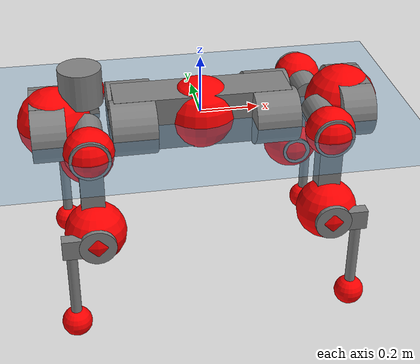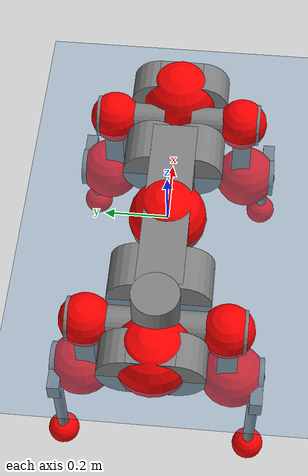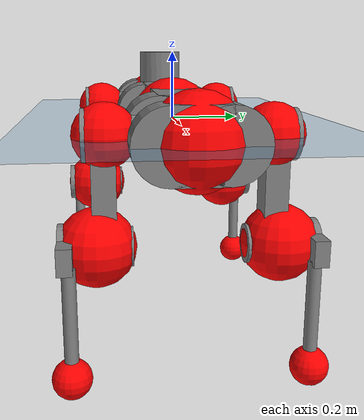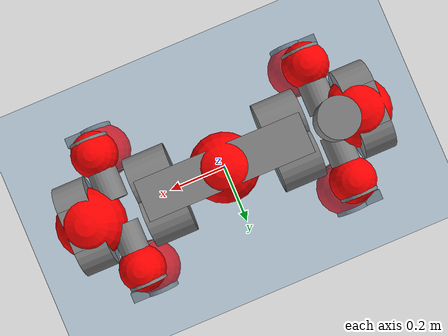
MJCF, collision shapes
<mujoco model="anymal_c">
  <compiler angle="radian" assetdir="assets" balanceinertia="true" inertiafromgeom="false"/>

  <option timestep="0.005" density="1.2" viscosity="2e-05"/>

  <size nkey="1"/>

  <visual>
    <quality shadowsize="8192"/>
    <map shadowclip="0.5"/>
  </visual>

  <default>
    <default class="/">
      <material specular="0" shininess="0.25"/>
      <geom contype="0" conaffinity="0" group="1" solref="-1000 -80"/>
      <site size="0.01 0.005 0.005" group="5"/>
      <general forcelimited="true" forcerange="-80 80" biastype="affine" gainprm="80" biasprm="0 -80 -2"/>
      <default class="anymal_c">
        <joint armature="0.01" damping="0.01" frictionloss="0.1"/>
        <default class="visual">
          <geom type="mesh" group="2"/>
          <default class="visual_zflip"/>
        </default>
        <default class="collision">
          <geom type="cylinder" group="3"/>
          <default class="foot">
            <geom size="0.03 0 0" type="sphere" condim="6" priority="1" friction="0.8 0.02 0.01" solimp="0.015 1 0.03"/>
          </default>
        </default>
      </default>
      <default class="reward_collision_sphere">
        <geom group="5" rgba="1 0 0 1"/>
      </default>
    </default>
  </default>

  <asset>
    <texture type="skybox" colorspace="auto" name="//unnamed_texture_0" builtin="gradient" rgb1="0.95 0.95 0.95" rgb2="0.95 0.95 0.95" width="100" height="600"/>
    <texture type="2d" colorspace="auto" name="texplane" builtin="checker" rgb1="0.345 0.575 0.748" rgb2="0.345 0.575 0.748" markrgb="1 1 1" width="512" height="512"/>
    <texture type="2d" colorspace="linear" name="base" file="base.png"/>
    <texture type="2d" colorspace="linear" name="top_shell" file="top_shell.png"/>
    <texture type="2d" colorspace="linear" name="bottom_shell" file="bottom_shell.png"/>
    <texture type="2d" colorspace="linear" name="remote" file="remote.png"/>
    <texture type="2d" colorspace="linear" name="hatch" file="hatch.png"/>
    <texture type="2d" colorspace="linear" name="handle" file="handle.png"/>
    <texture type="2d" colorspace="linear" name="face" file="face.png"/>
    <texture type="2d" colorspace="linear" name="battery" file="battery.png"/>
    <texture type="2d" colorspace="linear" name="lidar_cage" file="lidar_cage.png"/>
    <texture type="2d" colorspace="linear" name="depth_camera" file="depth_camera.png"/>
    <texture type="2d" colorspace="linear" name="wide_angle_camera" file="wide_angle_camera.png"/>
    <texture type="2d" colorspace="linear" name="lidar" file="lidar.png"/>
    <texture type="2d" colorspace="linear" name="drive" file="drive.png"/>
    <texture type="2d" colorspace="linear" name="hip_l" file="hip_l.png"/>
    <texture type="2d" colorspace="linear" name="shank_l" file="shank_l.png"/>
    <texture type="2d" colorspace="linear" name="foot" file="foot.png"/>
    <texture type="2d" colorspace="linear" name="thigh" file="thigh.png"/>
    <texture type="2d" colorspace="linear" name="shank_r" file="shank_r.png"/>
    <texture type="2d" colorspace="linear" name="hip_r" file="hip_r.png"/>
    <material name="MatPlane" class="/" texture="texplane" texuniform="true" texrepeat="2 2" specular="0.9" shininess="0.5"/>
    <material name="black_plastic" class="/" rgba="0.007 0.007 0.007 1"/>
    <material name="green" class="/" rgba="0.052 0.178 0.033 1"/>
    <material name="red" class="/" rgba="0.178 0.006 0.005 1"/>
    <material name="yellow" class="/" rgba="0.178 0.119 0.006 1"/>
    <material name="lwl" class="/" rgba="0.8 0.8 0.8 1"/>
    <material name="base" class="/" texture="base"/>
    <material name="top_shell" class="/" texture="top_shell"/>
    <material name="bottom_shell" class="/" texture="bottom_shell"/>
    <material name="hip_l" class="/" texture="hip_l"/>
    <material name="thigh" class="/" texture="thigh"/>
    <material name="shank_l" class="/" texture="shank_l"/>
    <material name="foot" class="/" texture="foot"/>
    <material name="hip_r" class="/" texture="hip_r"/>
    <material name="shank" class="/" texture="shank_r"/>
    <material name="hatch" class="/" texture="hatch"/>
    <material name="remote" class="/" texture="remote"/>
    <material name="handle" class="/" texture="handle"/>
    <material name="face" class="/" texture="face"/>
    <material name="depth_camera" class="/" texture="depth_camera"/>
    <material name="wide_angle_camera" class="/" texture="wide_angle_camera"/>
    <material name="battery" class="/" texture="battery"/>
    <material name="lidar_cage" class="/" texture="lidar_cage"/>
    <material name="lidar" class="/" texture="lidar"/>
    <material name="drive" class="/" texture="drive"/>
    <mesh name="base_0" class="/" file="base_0.obj"/>
    <mesh name="base_1" class="/" file="base_1.obj"/>
    <mesh name="base_2" class="/" file="base_2.obj"/>
    <mesh name="base_3" class="/" file="base_3.obj"/>
    <mesh name="base_4" class="/" file="base_4.obj"/>
    <mesh name="base_5" class="/" file="base_5.obj"/>
    <mesh name="top_shell" class="/" file="top_shell.obj"/>
    <mesh name="bottom_shell" class="/" file="bottom_shell.obj"/>
    <mesh name="remote" class="/" file="remote.obj"/>
    <mesh name="handle" class="/" file="handle.obj"/>
    <mesh name="face" class="/" file="face.obj"/>
    <mesh name="wide_angle_camera" class="/" file="wide_angle_camera.obj"/>
    <mesh name="depth_camera" class="/" file="depth_camera.obj"/>
    <mesh name="battery" class="/" file="battery.obj"/>
    <mesh name="lidar_cage" class="/" file="lidar_cage.obj"/>
    <mesh name="lidar" class="/" file="lidar.obj"/>
    <mesh name="drive" class="/" file="drive.obj"/>
    <mesh name="hip_l" class="/" file="hip_l.obj"/>
    <mesh name="thigh" class="/" file="thigh.obj"/>
    <mesh name="shank_l" class="/" file="shank_l.obj"/>
    <mesh name="foot" class="/" file="foot.obj"/>
    <mesh name="hip_r" class="/" file="hip_r.obj"/>
    <mesh name="hatch" class="/" file="hatch.obj"/>
    <mesh name="shank_r" class="/" file="shank_r.obj"/>
  </asset>

  <worldbody>
    <geom name="floor" class="/" size="100 100 0.125" type="plane" group="0" material="MatPlane"/>
    <light name="toplight_shadow" class="/" pos="0 0 5" dir="0.0990148 0.0990148 -0.990148" type="directional" ambient="0.04 0.04 0.04" diffuse="0.55 0.55 0.55" specular="0.12 0.12 0.12"/>
    <light name="toplight_fill" class="/" pos="0 0 5" dir="0.0990148 0.0990148 -0.990148" type="directional" castshadow="false" ambient="0.04 0.04 0.04" diffuse="0.3 0.3 0.3" specular="0.08 0.08 0.08"/>
    <body name="trunk" childclass="anymal_c" pos="0.00103919 -1.35805e-05 -0.000600002" quat="1 -4.7653e-05 1.68696e-05 2.06983e-05">
      <inertial pos="6.23409e-05 -0.0026556 0.0489816" quat="0.498364 0.504538 0.498586 0.498485" mass="22.1584" diaginertia="1.05434 0.607297 0.227862"/>
      <joint name="//unnamed_joint_0" type="free" armature="0" damping="0" frictionloss="0"/>
      <geom name="//unnamed_geom_1" class="visual" material="green" mesh="base_0"/>
      <geom name="//unnamed_geom_2" class="visual" material="yellow" mesh="base_1"/>
      <geom name="//unnamed_geom_3" class="visual" material="red" mesh="base_2"/>
      <geom name="//unnamed_geom_4" class="visual" material="black_plastic" mesh="base_3"/>
      <geom name="//unnamed_geom_5" class="visual" material="lwl" mesh="base_4"/>
      <geom name="//unnamed_geom_6" class="visual" material="base" mesh="base_5"/>
      <geom name="trunk_1" class="collision" size="0.300677 0.0725772 0.0933136" type="box"/>
      <geom name="trunk_2" class="collision" size="0.0933136 0.0751693" pos="0.240259 0.0696251 0" quat="0.707107 0 0.707107 0"/>
      <geom name="trunk_3" class="collision" size="0.0933136 0.0751693" pos="-0.240259 0.0696251 0" quat="0.707107 0 0.707107 0"/>
      <geom name="trunk_4" class="collision" size="0.0933136 0.0751693" pos="0.240259 -0.0696251 0" quat="0.707107 0 0.707107 0"/>
      <geom name="trunk_5" class="collision" size="0.0933136 0.0751693" pos="-0.240259 -0.0696251 0" quat="0.707107 0 0.707107 0"/>
      <geom name="//unnamed_geom_12" class="visual" material="top_shell" mesh="top_shell"/>
      <geom name="//unnamed_geom_13" class="visual" material="bottom_shell" mesh="bottom_shell"/>
      <geom name="//unnamed_geom_14" class="visual" material="remote" mesh="remote"/>
      <geom name="//unnamed_geom_15" class="visual" material="handle" mesh="handle"/>
      <geom name="//unnamed_geom_16" class="visual" pos="0.457872 0 0" quat="1 0 0 0" material="face" mesh="face"/>
      <geom name="trunk_6" class="collision" size="0.057025 0.0725772 0.0933136" pos="0.518627 0 0" type="box"/>
      <geom name="//unnamed_geom_18" class="collision" size="0.0933136 0.057025" pos="0.518627 0.0696251 0" quat="0.707107 0 0.707107 0"/>
      <geom name="//unnamed_geom_19" class="collision" size="0.0933136 0.057025" pos="0.518627 -0.0696251 0" quat="0.707107 0 0.707107 0"/>
      <geom name="//unnamed_geom_20" class="visual" pos="0.509952 0 -0.0288158" quat="0.965926 0 0.258819 0" material="depth_camera" mesh="depth_camera"/>
      <geom name="//unnamed_geom_21" class="visual" pos="0.566679 0 0.0151372" material="wide_angle_camera" mesh="wide_angle_camera"/>
      <geom name="//unnamed_geom_22" class="visual_zflip" pos="-0.457872 0 0" quat="0 0 0 1" material="face" mesh="face"/>
      <geom name="trunk_7" class="collision" size="0.057025 0.0725772 0.0933136" pos="-0.518627 0 0" quat="0 0 0 1" type="box"/>
      <geom name="//unnamed_geom_24" class="collision" size="0.0933136 0.057025" pos="-0.518627 -0.0696251 0" quat="0 -0.707107 0 0.707107"/>
      <geom name="//unnamed_geom_25" class="collision" size="0.0933136 0.057025" pos="-0.518627 0.0696251 0" quat="0 -0.707107 0 0.707107"/>
      <geom name="//unnamed_geom_26" class="visual" pos="-0.509952 0 -0.0288158" quat="0 -0.258819 0 0.965926" material="depth_camera" mesh="depth_camera"/>
      <geom name="//unnamed_geom_27" class="visual_zflip" pos="-0.566679 0 0.0151372" quat="0 0 0 1" material="wide_angle_camera" mesh="wide_angle_camera"/>
      <geom name="//unnamed_geom_28" class="visual" material="battery" mesh="battery"/>
      <geom name="//unnamed_geom_29" class="visual" pos="0 0.0746033 0.0300849" quat="0.683013 -0.183013 0.183013 0.683013" material="depth_camera" mesh="depth_camera"/>
      <geom name="//unnamed_geom_30" class="visual" pos="0 -0.0746033 0.0300849" quat="0.683013 0.183013 0.183013 -0.683013" material="depth_camera" mesh="depth_camera"/>
      <geom name="//unnamed_geom_31" class="visual" pos="-0.402088 0 0.0743211" quat="1 0 0 0" material="lidar_cage" mesh="lidar_cage"/>
      <geom name="trunk_8" class="collision" size="0.0725772 0.0622091" pos="-0.402088 0 0.134991"/>
      <geom name="//unnamed_geom_33" class="visual" pos="-0.402088 -4.32131e-05 0.143789" quat="0.707107 0 0 -0.707107" material="lidar" mesh="lidar"/>
      <geom name="//unnamed_geom_34" class="visual" pos="0.331281 0.103449 -2.85076e-10" quat="0.258819 0.965926 0 0" material="drive" mesh="drive"/>
      <geom name="//unnamed_geom_35" class="visual" pos="0.331281 -0.103449 2.85076e-10" quat="0.258819 -0.965926 0 0" material="drive" mesh="drive"/>
      <geom name="//unnamed_geom_36" class="visual" pos="-0.331281 0.103449 2.85076e-10" quat="0 0 0.965926 -0.258819" material="drive" mesh="drive"/>
      <geom name="//unnamed_geom_37" class="visual" pos="-0.331281 -0.103449 -2.85076e-10" quat="0 0 -0.965926 -0.258819" material="drive" mesh="drive"/>
      <geom name="//unnamed_geom_38" class="visual" pos="0.128138 0 0.0738155" quat="1 0 0 0" material="hatch" mesh="hatch"/>
      <geom name="//unnamed_geom_39" class="reward_collision_sphere" size="0.124418"/>
      <geom name="//unnamed_geom_40" class="reward_collision_sphere" size="0.124418" pos="0.497087 0 0"/>
      <geom name="//unnamed_geom_41" class="reward_collision_sphere" size="0.124418" pos="-0.497087 0 0"/>
      <site name="imu" pos="0.288335 0.00895677 0.0333087" size="0.0103682"/>
      <camera name="track" pos="0 -1.98929 0" quat="0.707107 0.707107 0 0" mode="trackcom"/>
      <camera name="ego_camera" pos="0.497087 0 -0.0404468" quat="-0.5 -0.5 0.5 0.5"/>
      <body name="LF_HIP" pos="0.329672 0.101627 -0.000837403" quat="0.258983 0.965882 -0.000162825 -0.000193369">
        <inertial pos="0.0627559 -0.0169735 -0.00837683" quat="-0.128069 0.709646 -0.134422 0.679656" mass="3.02146" diaginertia="0.00932957 0.00449602 0.00337385"/>
        <joint name="LF_HAA" pos="0 0 0" axis="0.999994 0.00334039 0.0012569" range="-0.716556 0.48662" armature="0.0106729" damping="0.016322" frictionloss="0.0951441"/>
        <geom name="//unnamed_geom_42" class="visual" pos="0 -1.67698e-05 2.75442e-06" quat="0.258819 -0.965926 0 0" material="hip_l" mesh="hip_l"/>
        <geom name="//unnamed_geom_43" class="visual" pos="0.0661678 -0.078734 -0.0455793" quat="0.183013 -0.683013 0.683013 0.183013" material="drive" mesh="drive"/>
        <geom name="//unnamed_geom_44" class="collision" size="0.0518409 0.0725772" pos="0.0661678 -0.0118958 -0.00698214" quat="-0.353553 -0.612372 0.612372 -0.353553"/>
        <body name="LF_THIGH" pos="0.0657039 -0.0697136 -0.0418187" quat="0.181925 -0.682654 0.683543 0.183455">
          <inertial pos="0.0347539 1.43541e-05 -0.247567" quat="0.993592 -0.0145801 -0.0747669 0.0835005" mass="3.3388" diaginertia="0.0495656 0.0280932 0.00436934"/>
          <joint name="LF_HFE" pos="0 0 0" axis="0.999994 -0.00298957 -0.00181819" stiffness="0.00217494" range="-3.09278 3.16923" armature="0.0109424" damping="0.0193603" frictionloss="0.0987123"/>
          <geom name="//unnamed_geom_45" class="visual" pos="0.00218842 3.44844e-06 0" quat="0.707107 0 0 -0.707107" material="thigh" mesh="thigh"/>
          <geom name="//unnamed_geom_46" class="collision" size="0.0673932 0.0414727" pos="0.0441855 0 0" quat="0.5 0.5 -0.5 -0.5"/>
          <geom name="//unnamed_geom_47" class="collision" size="0.0388807 0.0311045 0.146517" pos="0.0331391 0 -0.142893" quat="0.707107 0 0 -0.707107" type="box"/>
          <geom name="//unnamed_geom_48" class="visual" pos="0.110795 0 -0.288184" quat="1 0 0 0" material="drive" mesh="drive"/>
          <geom name="//unnamed_geom_49" class="collision" size="0.0518409 0.0725772" pos="0.0334705 0 -0.288184" quat="0.707107 0 0.707107 0"/>
          <geom name="//unnamed_geom_50" class="reward_collision_sphere" size="0.0829454" pos="0.0276159 0 0"/>
          <body name="LF_SHANK" pos="0.111038 0.00238795 -0.288447" quat="1 0.000247608 -0.000127195 0.000373477">
            <inertial pos="0.00635132 -0.0619912 -0.0819004" quat="0.992792 -0.117024 -0.00111864 -0.0258386" mass="0.660558" diaginertia="0.0163872 0.00909098 0.00118097"/>
            <joint name="LF_KFE" pos="0 0 0" axis="0.999996 0.0028598 -2.29765e-06" range="-3.10988 3.13681" armature="0.0100439" damping="0.00978079" frictionloss="0.10408"/>
            <geom name="//unnamed_geom_51" class="visual" pos="0.000713596 0.00380493 0" quat="0.707107 0 0 -0.707107" material="shank_l" mesh="shank_l"/>
            <geom name="LF_kfe_act" class="collision" size="0.0622091 0.0207364" pos="0.0220927 0 0" quat="0.5 0.5 -0.5 -0.5"/>
            <geom name="//unnamed_geom_53" class="collision" size="0.059616 0.0349926 0.0196995" pos="0.0220927 -0.0571911 0" quat="0.5 0.5 -0.5 -0.5" type="box"/>
            <geom name="//unnamed_geom_54" class="visual" pos="0.0144153 -0.0862528 -0.341745" quat="0.382683 0 0 -0.92388" material="foot" mesh="foot"/>
            <geom name="LF_calf" class="collision" size="0.0181443 0.146453" pos="0.0144155 -0.087479 -0.170873" quat="0.707107 0 0 -0.707107"/>
            <geom name="LF_foot" class="foot" size="0.0305663" pos="0.0144155 -0.087479 -0.318994" quat="0.707107 0 0 -0.707107"/>
            <geom name="//unnamed_geom_57" class="reward_collision_sphere" size="0.103682" pos="-0.0552319 0 0"/>
            <geom name="//unnamed_geom_58" class="reward_collision_sphere" size="0.0518409" pos="0.0144155 -0.087479 -0.318994"/>
            <site name="LF_foot" class="foot" pos="0.0144155 -0.087479 -0.318994" quat="0.707107 0 0 -0.707107" size="0.0103682"/>
          </body>
        </body>
      </body>
      <body name="RF_HIP" pos="0.329067 -0.103586 0.00138954" quat="0.25869 -0.96596 -1.95568e-05 2.53248e-05">
        <inertial pos="0.0613685 0.0129806 -0.0100856" quat="0.14286 0.670324 0.128851 0.716697" mass="3.0574" diaginertia="0.0092608 0.00489939 0.00335126"/>
        <joint name="RF_HAA" pos="0 0 0" axis="0.999955 0.00367574 -0.00873735" range="-0.507113 0.721643" armature="0.0103458" damping="0.000369522" frictionloss="0.101299"/>
        <geom name="//unnamed_geom_59" class="visual" pos="0 1.67696e-05 2.75441e-06" quat="0.258819 0.965926 0 0" material="hip_r" mesh="hip_r"/>
        <geom name="//unnamed_geom_60" class="visual" pos="0.0661678 0.078734 -0.0455793" quat="0.183013 0.683013 0.683013 -0.183013" material="drive" mesh="drive"/>
        <geom name="//unnamed_geom_61" class="collision" size="0.0518409 0.0725772" pos="0.0661678 0.0118958 -0.00698214" quat="-0.353553 0.612372 0.612372 0.353553"/>
        <body name="RF_THIGH" pos="0.0672642 0.0720055 -0.0448611" quat="0.182641 0.682476 0.683462 -0.183707">
          <inertial pos="0.0368194 0.000795079 -0.24899" quat="0.992665 -0.00536546 -0.0853343 0.0854685" mass="3.56229" diaginertia="0.0494753 0.0285523 0.00462867"/>
          <joint name="RF_HFE" pos="0 0 0" axis="0.999998 -0.0017031 0.00102321" range="-3.15497 3.157" armature="0.00964545" damping="0.0119688" frictionloss="0.10317"/>
          <geom name="//unnamed_geom_62" class="visual" pos="0.00218842 3.44844e-06 0" quat="0.707107 0 0 -0.707107" material="thigh" mesh="thigh"/>
          <geom name="//unnamed_geom_63" class="collision" size="0.0673932 0.0414727" pos="0.0441855 0 0" quat="0.5 0.5 0.5 0.5"/>
          <geom name="//unnamed_geom_64" class="collision" size="0.0388807 0.0311045 0.146517" pos="0.0331391 0 -0.142893" quat="0.707107 0 0 0.707107" type="box"/>
          <geom name="//unnamed_geom_65" class="visual" pos="0.110795 0 -0.288184" quat="1 0 0 0" material="drive" mesh="drive"/>
          <geom name="//unnamed_geom_66" class="collision" size="0.0518409 0.0725772" pos="0.0334705 0 -0.288184" quat="0.707107 0 0.707107 0"/>
          <geom name="//unnamed_geom_67" class="reward_collision_sphere" size="0.0829454" pos="0.0276159 0 0"/>
          <body name="RF_SHANK" pos="0.109358 -0.000517647 -0.287363" quat="1 -0.000226496 0.000120482 -0.000410464">
            <inertial pos="0.00413374 0.0609287 -0.0813699" quat="0.993836 0.10756 0.00945649 0.0251195" mass="0.683588" diaginertia="0.017155 0.00922645 0.00121148"/>
            <joint name="RF_KFE" pos="0 0 0" axis="0.999999 -0.00127973 -2.24158e-05" range="-3.18992 3.11185" armature="0.0116953" damping="0.0226533" frictionloss="0.104407"/>
            <geom name="//unnamed_geom_68" class="visual" pos="0.000713592 -0.00380492 0" quat="0.707107 0 0 0.707107" material="shank" mesh="shank_r"/>
            <geom name="RF_kfe_act" class="collision" size="0.0622091 0.0207364" pos="0.0220927 0 0" quat="0.5 0.5 0.5 0.5"/>
            <geom name="//unnamed_geom_70" class="collision" size="0.059616 0.0349926 0.0196995" pos="0.0220927 0.0571911 0" quat="0.5 0.5 0.5 0.5" type="box"/>
            <geom name="//unnamed_geom_71" class="visual" pos="0.0144157 0.0862528 -0.341745" quat="0.382683 0 0 0.92388" material="foot" mesh="foot"/>
            <geom name="RF_calf" class="collision" size="0.0181443 0.146453" pos="0.0144155 0.087479 -0.170873" quat="0.707107 0 0 0.707107"/>
            <geom name="RF_foot" class="foot" size="0.0279665" pos="0.0144155 0.087479 -0.318994" quat="0.707107 0 0 0.707107"/>
            <geom name="//unnamed_geom_74" class="reward_collision_sphere" size="0.103682" pos="-0.0552319 0 0"/>
            <geom name="//unnamed_geom_75" class="reward_collision_sphere" size="0.0518409" pos="0.0144155 0.087479 -0.318994"/>
            <site name="RF_foot" class="foot" pos="0.0144155 0.087479 -0.318994" quat="0.707107 0 0 0.707107" size="0.0103682"/>
          </body>
        </body>
      </body>
      <body name="LH_HIP" pos="-0.328019 0.102015 -0.00120466" quat="-1.07214e-05 -0.000186829 0.965974 -0.258641">
        <inertial pos="0.0628614 0.01667 -0.0111514" quat="0.132137 0.68718 0.123992 0.703526" mass="3.20681" diaginertia="0.0102776 0.0050177 0.00356104"/>
        <joint name="LH_HAA" pos="0 0 0" axis="0.999912 -0.00800161 -0.0106191" range="-0.497707 0.713358" armature="0.010558" damping="0" frictionloss="0.104104"/>
        <geom name="//unnamed_geom_76" class="visual" pos="0 1.67696e-05 2.75441e-06" quat="-0.258819 -0.965926 0 0" material="hip_r" mesh="hip_r"/>
        <geom name="//unnamed_geom_77" class="visual" pos="0.0661678 0.078734 -0.0455793" quat="0.183013 0.683013 0.683013 -0.183013" material="drive" mesh="drive"/>
        <geom name="//unnamed_geom_78" class="collision" size="0.0518409 0.0725772" pos="0.0661678 0.0118958 -0.00698214" quat="-0.353553 0.612372 0.612372 0.353553"/>
        <body name="LH_THIGH" pos="0.0656909 0.0716681 -0.0434739" quat="0.1829 0.682844 0.683096 -0.183442">
          <inertial pos="0.0315125 -0.000813072 -0.250968" quat="0.992827 -0.00544777 -0.0801915 0.0885068" mass="3.35011" diaginertia="0.0469815 0.0290723 0.00429621"/>
          <joint name="LH_HFE" pos="0 0 0" axis="1 0.000136126 0.000106174" stiffness="0.00949313" range="-3.15492 3.10765" armature="0.0098446" damping="0" frictionloss="0.102589"/>
          <geom name="//unnamed_geom_79" class="visual" pos="0.00218842 3.44844e-06 0" quat="0.707107 0 0 -0.707107" material="thigh" mesh="thigh"/>
          <geom name="//unnamed_geom_80" class="collision" size="0.0673932 0.0414727" pos="0.0441855 0 0" quat="0.5 0.5 -0.5 -0.5"/>
          <geom name="//unnamed_geom_81" class="collision" size="0.0388807 0.0311045 0.146517" pos="0.0331391 0 -0.142893" quat="0.707107 0 0 -0.707107" type="box"/>
          <geom name="//unnamed_geom_82" class="visual" pos="0.110795 0 -0.288184" quat="1 0 0 0" material="drive" mesh="drive"/>
          <geom name="//unnamed_geom_83" class="collision" size="0.0518409 0.0725772" pos="0.0334705 0 -0.288184" quat="0.707107 0 0.707107 0"/>
          <geom name="//unnamed_geom_84" class="reward_collision_sphere" size="0.0829454" pos="0.0276159 0 0"/>
          <body name="LH_SHANK" pos="0.110951 -0.00161245 -0.287195" quat="1 8.88647e-05 0.000137425 0.000137019">
            <inertial pos="0.00662321 0.0634421 -0.080804" quat="0.993359 0.113301 0.00209692 0.0198895" mass="0.675043" diaginertia="0.0168876 0.00957872 0.00120804"/>
            <joint name="LH_KFE" pos="0 0 0" axis="0.999997 -0.00255903 0.000396812" range="-3.09436 3.10456" armature="0.01178" damping="0.0229996" frictionloss="0.0910723"/>
            <geom name="//unnamed_geom_85" class="visual" pos="0.000713592 -0.00380492 0" quat="-0.707107 0 0 -0.707107" material="shank" mesh="shank_r"/>
            <geom name="LH_kfe_act" class="collision" size="0.0622091 0.0207364" pos="0.0220927 0 0" quat="0.5 0.5 -0.5 -0.5"/>
            <geom name="//unnamed_geom_87" class="collision" size="0.059616 0.0349926 0.0196995" pos="0.0220927 0.0571911 0" quat="0.5 0.5 -0.5 -0.5" type="box"/>
            <geom name="//unnamed_geom_88" class="visual" pos="0.0144157 0.0862528 -0.341745" quat="-0.382683 0 0 -0.92388" material="foot" mesh="foot"/>
            <geom name="LH_calf" class="collision" size="0.0181443 0.146453" pos="0.0144155 0.087479 -0.170873" quat="0.707107 0 0 -0.707107"/>
            <geom name="LH_foot" class="foot" size="0.0326006" pos="0.0144155 0.087479 -0.318994" quat="0.707107 0 0 -0.707107"/>
            <geom name="//unnamed_geom_91" class="reward_collision_sphere" size="0.103682" pos="-0.0552319 0 0"/>
            <geom name="//unnamed_geom_92" class="reward_collision_sphere" size="0.0518409" pos="0.0144155 0.087479 -0.318994"/>
            <site name="LH_foot" class="foot" pos="0.0144155 0.087479 -0.318994" quat="0.707107 0 0 -0.707107" size="0.0103682"/>
          </body>
        </body>
      </body>
      <body name="RH_HIP" pos="-0.32861 -0.104337 0.000600797" quat="5.50193e-05 -0.000154544 -0.96593 -0.258805">
        <inertial pos="0.0614215 -0.0145957 -0.0112698" quat="-0.120698 0.715785 -0.140969 0.67321" mass="3.08855" diaginertia="0.00932891 0.00463366 0.00335464"/>
        <joint name="RH_HAA" pos="0 0 0" axis="0.999895 0.000247915 0.0144693" range="-0.77638 0.508667" armature="0.0104245" damping="0.00634426" frictionloss="0.104274"/>
        <geom name="//unnamed_geom_93" class="visual" pos="0 -1.67698e-05 2.75442e-06" quat="-0.258819 0.965926 0 0" material="hip_l" mesh="hip_l"/>
        <geom name="//unnamed_geom_94" class="visual" pos="0.0661678 -0.078734 -0.0455793" quat="-0.183013 0.683013 -0.683013 -0.183013" material="drive" mesh="drive"/>
        <geom name="//unnamed_geom_95" class="collision" size="0.0518409 0.0725772" pos="0.0661678 -0.0118958 -0.00698214" quat="0.353553 0.612372 -0.612372 0.353553"/>
        <body name="RH_THIGH" pos="0.0687185 -0.0721415 -0.0445409" quat="-0.182035 0.68277 -0.683555 -0.182869">
          <inertial pos="0.0347769 0.000976531 -0.24931" quat="0.993148 -0.0050884 -0.0809115 0.0841664" mass="3.27379" diaginertia="0.0475739 0.0285369 0.00437239"/>
          <joint name="RH_HFE" pos="0 0 0" axis="0.999984 0.000120104 -0.00573456" stiffness="0.0033854" range="-3.11717 3.16175" armature="0.010834" damping="0.011496" frictionloss="0.105436"/>
          <geom name="//unnamed_geom_96" class="visual" pos="0.00218842 3.44844e-06 0" quat="0.707107 0 0 -0.707107" material="thigh" mesh="thigh"/>
          <geom name="//unnamed_geom_97" class="collision" size="0.0673932 0.0414727" pos="0.0441855 0 0" quat="0.5 0.5 0.5 0.5"/>
          <geom name="//unnamed_geom_98" class="collision" size="0.0388807 0.0311045 0.146517" pos="0.0331391 0 -0.142893" quat="0.707107 0 0 0.707107" type="box"/>
          <geom name="//unnamed_geom_99" class="visual" pos="0.110795 0 -0.288184" quat="1 0 0 0" material="drive" mesh="drive"/>
          <geom name="//unnamed_geom_100" class="collision" size="0.0518409 0.0725772" pos="0.0334705 0 -0.288184" quat="0.707107 0 0.707107 0"/>
          <geom name="//unnamed_geom_101" class="reward_collision_sphere" size="0.0829454" pos="0.0276159 0 0"/>
          <body name="RH_SHANK" pos="0.110072 0.00247284 -0.287952" quat="0.999999 -0.00129537 0.000166018 -0.000203418">
            <inertial pos="0.00853688 -0.0608178 -0.0825788" quat="0.99336 -0.112609 -0.0104988 -0.0210811" mass="0.668739" diaginertia="0.0165493 0.00900389 0.00117733"/>
            <joint name="RH_KFE" pos="0 0 0" axis="0.999997 0.0023539 5.03275e-05" range="-3.13595 3.18816" armature="0.0104306" damping="0.0229189" frictionloss="0.104132"/>
            <geom name="//unnamed_geom_102" class="visual" pos="0.000713596 0.00380493 0" quat="0.707107 0 0 -0.707107" material="shank_l" mesh="shank_l"/>
            <geom name="RH_kfe_act" class="collision" size="0.0622091 0.0207364" pos="0.0220927 0 0" quat="0.5 0.5 0.5 0.5"/>
            <geom name="//unnamed_geom_104" class="collision" size="0.059616 0.0349926 0.0196995" pos="0.0220927 -0.0571911 0" quat="0.5 0.5 0.5 0.5" type="box"/>
            <geom name="//unnamed_geom_105" class="visual" pos="0.0144153 -0.0862528 -0.341745" quat="0.382683 0 0 -0.92388" material="foot" mesh="foot"/>
            <geom name="RH_calf" class="collision" size="0.0181443 0.146453" pos="0.0144155 -0.087479 -0.170873" quat="0.707107 0 0 0.707107"/>
            <geom name="RH_foot" class="foot" size="0.02786" pos="0.0144155 -0.087479 -0.318994" quat="0.707107 0 0 0.707107"/>
            <geom name="//unnamed_geom_108" class="reward_collision_sphere" size="0.103682" pos="-0.0552319 0 0"/>
            <geom name="//unnamed_geom_109" class="reward_collision_sphere" size="0.0518409" pos="0.0144155 -0.087479 -0.318994"/>
            <site name="RH_foot" class="foot" pos="0.0144155 -0.087479 -0.318994" quat="0.707107 0 0 0.707107" size="0.0103682"/>
          </body>
        </body>
      </body>
    </body>
  </worldbody>

  <contact>
    <pair class="/" geom1="floor" geom2="LF_foot" name="//unnamed_contact_0"/>
    <pair class="/" geom1="floor" geom2="RF_foot" name="//unnamed_contact_1"/>
    <pair class="/" geom1="floor" geom2="LH_foot" name="//unnamed_contact_2"/>
    <pair class="/" geom1="floor" geom2="RH_foot" name="//unnamed_contact_3"/>
  </contact>

  <actuator>
    <general name="LF_HAA" class="/" joint="LF_HAA" forcerange="-77.174 77.174" gainprm="81.4507" biasprm="0 -81.4507 -2.06046"/>
    <general name="LF_HFE" class="/" joint="LF_HFE" forcerange="-74.5102 74.5102" gainprm="81.4507" biasprm="0 -81.4507 -2.06046"/>
    <general name="LF_KFE" class="/" joint="LF_KFE" forcerange="-85.7217 85.7217" gainprm="81.4507" biasprm="0 -81.4507 -2.06046"/>
    <general name="RF_HAA" class="/" joint="RF_HAA" forcerange="-85.4555 85.4555" gainprm="81.4507" biasprm="0 -81.4507 -2.06046"/>
    <general name="RF_HFE" class="/" joint="RF_HFE" forcerange="-91.0028 91.0028" gainprm="81.4507" biasprm="0 -81.4507 -2.06046"/>
    <general name="RF_KFE" class="/" joint="RF_KFE" forcerange="-86.1488 86.1488" gainprm="81.4507" biasprm="0 -81.4507 -2.06046"/>
    <general name="LH_HAA" class="/" joint="LH_HAA" forcerange="-83.4746 83.4746" gainprm="81.4507" biasprm="0 -81.4507 -2.06046"/>
    <general name="LH_HFE" class="/" joint="LH_HFE" forcerange="-77.5295 77.5295" gainprm="81.4507" biasprm="0 -81.4507 -2.06046"/>
    <general name="LH_KFE" class="/" joint="LH_KFE" forcerange="-83.2965 83.2965" gainprm="81.4507" biasprm="0 -81.4507 -2.06046"/>
    <general name="RH_HAA" class="/" joint="RH_HAA" forcerange="-83.3709 83.3709" gainprm="81.4507" biasprm="0 -81.4507 -2.06046"/>
    <general name="RH_HFE" class="/" joint="RH_HFE" forcerange="-91.4909 91.4909" gainprm="81.4507" biasprm="0 -81.4507 -2.06046"/>
    <general name="RH_KFE" class="/" joint="RH_KFE" forcerange="-79.6884 79.6884" gainprm="81.4507" biasprm="0 -81.4507 -2.06046"/>
  </actuator>

  <sensor>
    <gyro site="imu" name="imu_angular_velocity"/>
    <velocimeter site="imu" name="imu_linear_velocity"/>
    <framelinvel objtype="site" objname="LF_foot" name="LF_foot_global_linear_velocity"/>
    <framelinvel objtype="site" objname="RF_foot" name="RF_foot_global_linear_velocity"/>
    <framelinvel objtype="site" objname="LH_foot" name="LH_foot_global_linear_velocity"/>
    <framelinvel objtype="site" objname="RH_foot" name="RH_foot_global_linear_velocity"/>
  </sensor>

  <keyframe>
    <key name="home" qpos="0 0 0.55 1 0 0 0 0 0.4 -0.8 0 -0.4 0.8 0 -0.4 0.8 0 0.4 -0.8"/>
  </keyframe>
</mujoco>
